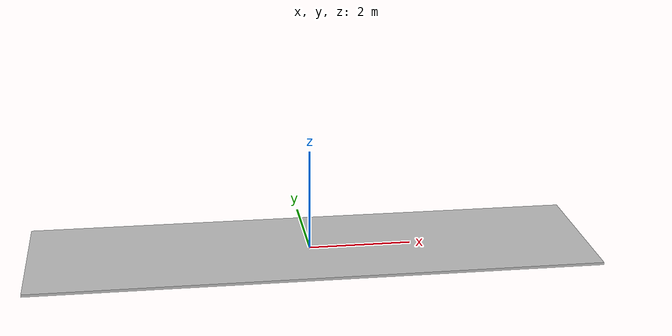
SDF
<?xml version='1.0'?>
<sdf version='1.6'>
  <model name="start_w400_black">
      <static>true</static>
      <link name='link'>
        <collision name='collision'>
          <geometry>
         <box>
            <size>11 3 0.05</size>
          </box>
          </geometry>
          <surface>
            <friction>
              <ode>
                <mu>100</mu>
                <mu2>50</mu2>
              </ode>
            </friction>
          </surface>
        </collision>
        <visual name='visual'>
          <cast_shadows>0</cast_shadows>
          <geometry>
         <box>
            <size>11 3 0.05</size>
          </box>
          </geometry>
          <material>
            <script>
              <uri>model://start_w400_black/materials/scripts</uri>
              <uri>model://start_w400_black/materials/textures/</uri>
              <name>start_w400_black/Image</name>
            </script>
          </material>
        </visual>
      </link>
  </model>
</sdf>
